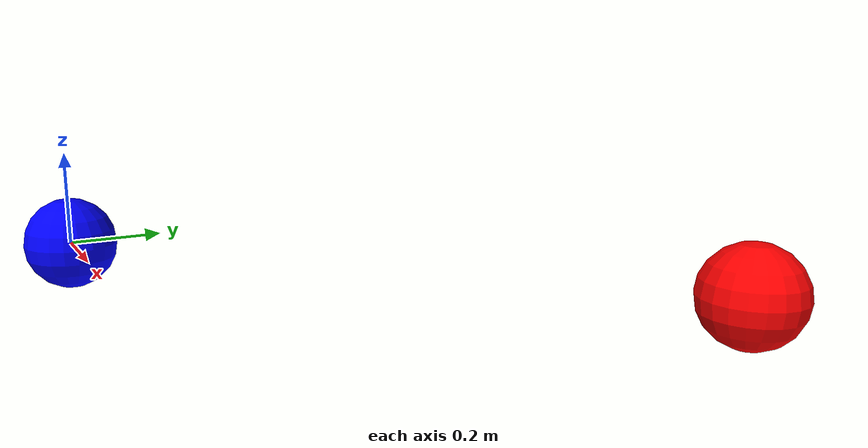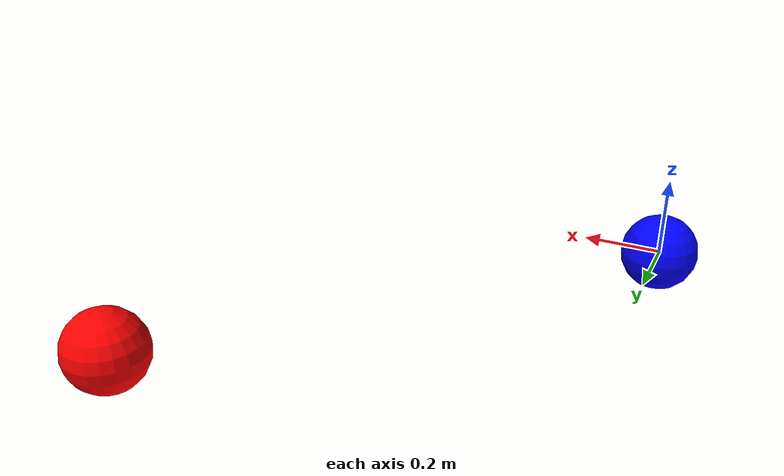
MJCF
<?xml version="1.0" ?>
<mujoco>
    <worldbody>
        <body name="agent" pos="1.0 1.0 0.0">
            <joint type="free"/>
            <geom type="sphere" size="0.1" rgba="1 0 0 1"/>
        </body>
        <body name="ball" pos="0.0 0.0 0.0">
            <geom type="sphere" size="0.1" rgba="0 0 1 1"/>
        </body>
    </worldbody>
</mujoco>
